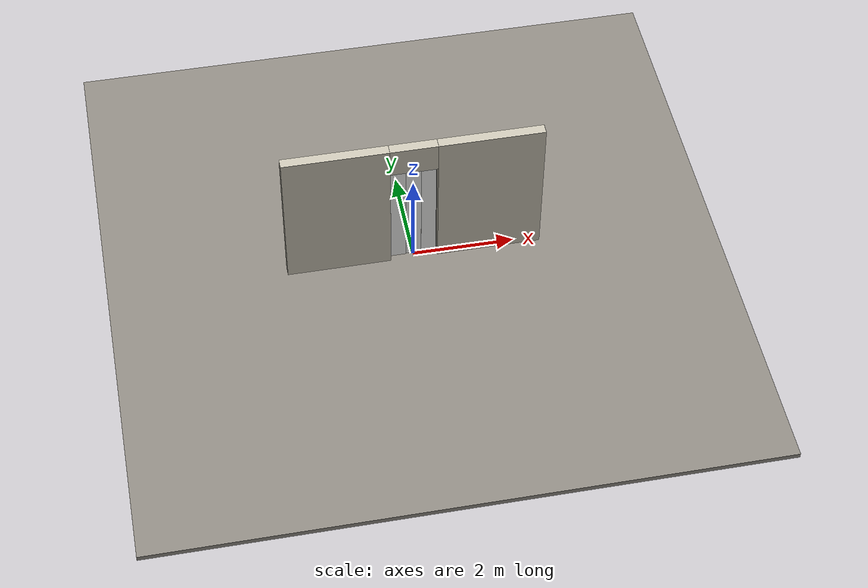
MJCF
<?xml version="1.0" ?>
<mujoco model="db0037_strip_curtain_minimal">
  <compiler angle="radian" meshdir="../../hardware" texturedir="../../textures" autolimits="true" inertiafromgeom="false"/>
  <option timestep="0.002" integrator="implicitfast" cone="elliptic" impratio="10" noslip_iterations="3">
    <flag multiccd="enable"/>
  </option>
  <size memory="16M"/>
  <default>
    <geom condim="4" solref="0.005 1" solimp="0.95 0.99 0.001"/>
    <joint solreflimit="0.005 1" solimplimit="0.95 0.99 0.001"/>
    <tendon solreflimit="0.005 1"/>
    <equality solref="0.002 1"/>
  </default>
  <visual>
    <headlight ambient="0.4 0.4 0.4" diffuse="0.7 0.7 0.7" specular="0.2 0.2 0.2"/>
    <quality shadowsize="4096"/>
    <map znear="0.01" zfar="60"/>
  </visual>
  <asset>
    <material name="mat_floor" rgba="0.55 0.53 0.5 1" specular="0.2" shininess="0.15" reflectance="0"/>
    <material name="mat_wall" rgba="0.78 0.76 0.7 1" specular="0.2" shininess="0.1" reflectance="0"/>
    <material name="mat_frame" rgba="0.75 0.76 0.77 1" specular="0.8" shininess="0.65" reflectance="0.4"/>
    <material name="mat_strip" rgba="0.85 0.9 0.95 0.45" specular="0.2" shininess="0.7" reflectance="0.1"/>
    <texture name="skybox" type="skybox" builtin="gradient" rgb1="0.6 0.7 0.85" rgb2="0.9 0.92 0.95" width="256" height="256"/>
  </asset>
  <worldbody>
    <light name="sun" pos="1.5 -2.5 4" dir="-0.3 0.5 -0.8" directional="true" diffuse="0.8 0.8 0.8" specular="0.3 0.3 0.3" castshadow="true"/>
    <light name="fill" pos="-1.5 2.5 3" dir="0.3 -0.5 -0.7" directional="true" diffuse="0.35 0.35 0.4" castshadow="false"/>
    <camera name="robot_view" pos="0 -2.89375 2.02025" xyaxes="1 0 0 0 0.26963 0.962964" fovy="52"/>
    <camera name="far_view" pos="0 2.89375 2.02025" xyaxes="-1 0 0 0 -0.26963 0.962964" fovy="52"/>
    <camera name="iso" pos="2.19925 -2.43075 2.48325" xyaxes="0.741536 0.670913 0 -0.242917 0.268487 0.932151" fovy="46"/>
    <camera name="detail_handle" pos="0.48 -0.8 1.28" xyaxes="0.97561 0.219512 0 -0.070934 0.315262 0.94635" fovy="38"/>
    <geom name="floor" type="box" size="6 6 0.05" pos="0 0 -0.05" material="mat_floor" group="0" contype="1" conaffinity="1" friction="0.8 0.005 0.0001" density="2400"/>
    <geom name="wall_left" type="box" size="1.02 0.1 1.51" pos="-1.48 0 1.51" material="mat_wall" group="0" contype="1" conaffinity="1" friction="0.6 0.005 0.0001" density="800"/>
    <geom name="wall_right" type="box" size="1.02 0.1 1.51" pos="1.48 0 1.51" material="mat_wall" group="0" contype="1" conaffinity="1" friction="0.6 0.005 0.0001" density="800"/>
    <geom name="wall_header" type="box" size="0.46 0.1 0.3" pos="0 0 2.72" material="mat_wall" group="0" contype="1" conaffinity="1" friction="0.6 0.005 0.0001" density="800"/>
    <geom name="hanger_rail" type="box" size="0.51 0.03 0.03" pos="0 0 2.45" material="mat_frame" group="0" contype="1" conaffinity="1" friction="0.6 0.005 0.0001" density="7900"/>
    <geom name="strip_0_hanger" type="box" size="0.15 0.0055 0.0145" pos="-0.3 -0.0085 2.4275" material="mat_frame" group="1" contype="0" conaffinity="0" density="7900"/>
    <geom name="strip_2_hanger" type="box" size="0.15 0.0055 0.0145" pos="0 0.0015 2.4275" material="mat_frame" group="1" contype="0" conaffinity="0" density="7900"/>
    <geom name="strip_4_hanger" type="box" size="0.15 0.0055 0.0145" pos="0.3 -0.0035 2.4275" material="mat_frame" group="1" contype="0" conaffinity="0" density="7900"/>
    <site name="approach_point" pos="0 -1.5 0" quat="1 0 0 0" size="0.05" rgba="0.2 0.9 0.2 0.5" group="4"/>
    <site name="goal_point" pos="0 1.5 0" quat="1 0 0 0" size="0.05" rgba="0.2 0.9 0.2 0.5" group="4"/>
    <site name="door_plane_center" pos="0 0 1.21" quat="1 0 0 0" size="0.02" rgba="0.2 0.9 0.2 0.5" group="4"/>
    <body name="strip_0" pos="-0.3 -0.0085 2.414">
      <inertial pos="0 0 -1.19" mass="2.005" quat="-0.5 0.5 0.5 0.5" diaginertia="0.015039004 0.946428337 0.961464333"/>
      <joint name="strip_0_hinge" type="hinge" axis="1 0 0" limited="true" range="-1.48353 1.48353" damping="0.05" frictionloss="0.02" armature="0.005"/>
      <geom name="strip_0_geom" type="box" size="0.15 0.0015 1.19" pos="0 0 -1.19" material="mat_strip" group="0" contype="1" conaffinity="1" friction="0.6 0.005 0.0001" density="1250"/>
    </body>
    <body name="strip_2" pos="0 0.0015 2.414">
      <inertial pos="0 0 -1.19" mass="2.005" quat="-0.5 0.5 0.5 0.5" diaginertia="0.015039004 0.946428337 0.961464333"/>
      <joint name="strip_2_hinge" type="hinge" axis="1 0 0" limited="true" range="-1.48353 1.48353" damping="0.05" frictionloss="0.02" armature="0.02"/>
      <geom name="strip_2_geom" type="box" size="0.15 0.0015 1.19" pos="0 0 -1.19" material="mat_strip" group="0" contype="1" conaffinity="1" friction="0.6 0.005 0.0001" density="1250"/>
    </body>
    <body name="strip_4" pos="0.3 -0.0035 2.414">
      <inertial pos="0 0 -1.19" mass="2.005" quat="-0.5 0.5 0.5 0.5" diaginertia="0.015039004 0.946428337 0.961464333"/>
      <joint name="strip_4_hinge" type="hinge" axis="1 0 0" limited="true" range="-1.48353 1.48353" damping="0.05" frictionloss="0.02" armature="0.005"/>
      <geom name="strip_4_geom" type="box" size="0.15 0.0015 1.19" pos="0 0 -1.19" material="mat_strip" group="0" contype="1" conaffinity="1" friction="0.6 0.005 0.0001" density="1250"/>
    </body>
  </worldbody>
  <sensor>
    <jointpos name="strip_0_hinge_pos" joint="strip_0_hinge"/>
    <jointvel name="strip_0_hinge_vel" joint="strip_0_hinge"/>
    <jointpos name="strip_2_hinge_pos" joint="strip_2_hinge"/>
    <jointvel name="strip_2_hinge_vel" joint="strip_2_hinge"/>
    <jointpos name="strip_4_hinge_pos" joint="strip_4_hinge"/>
    <jointvel name="strip_4_hinge_vel" joint="strip_4_hinge"/>
  </sensor>
</mujoco>
